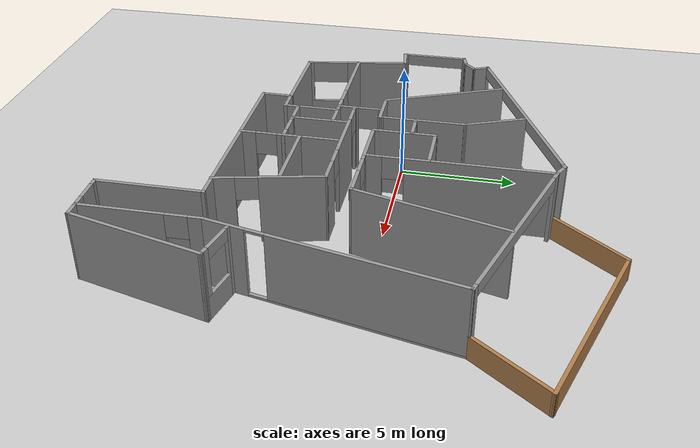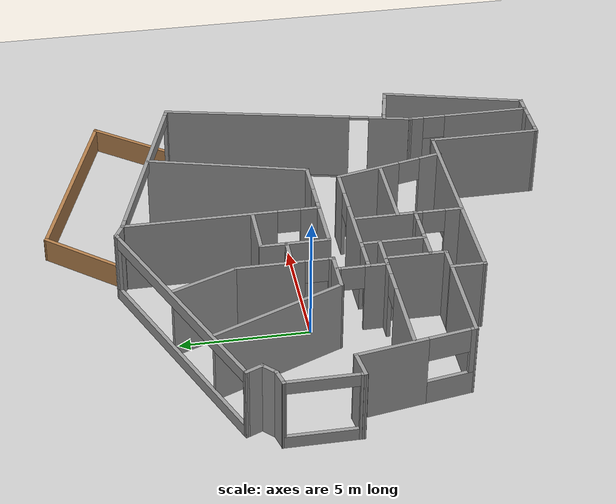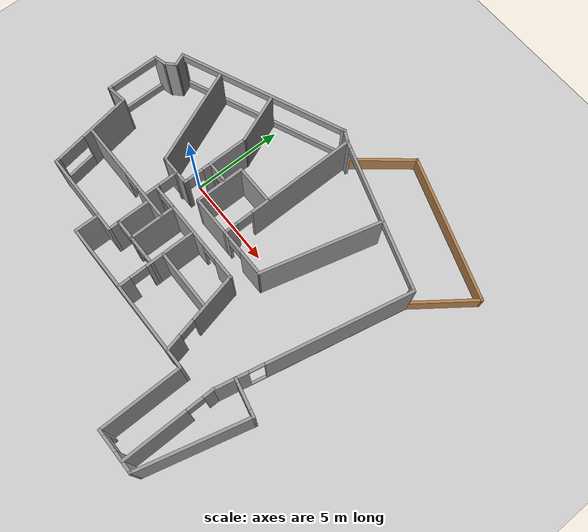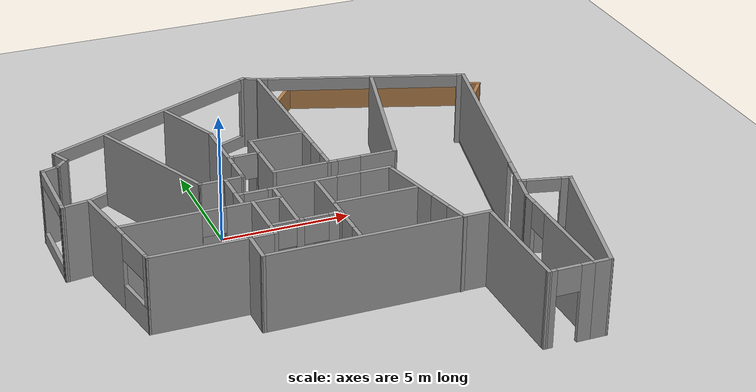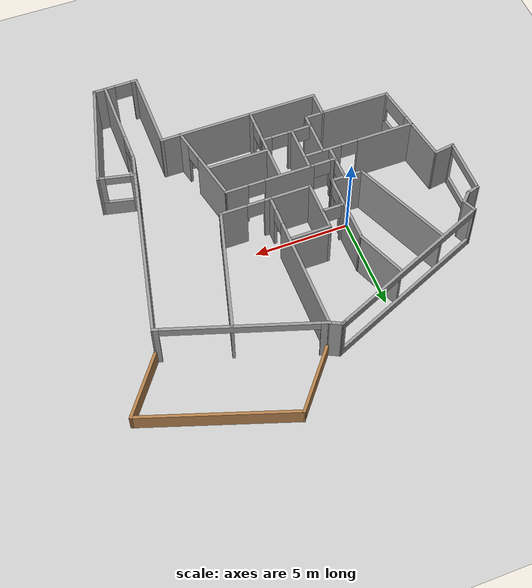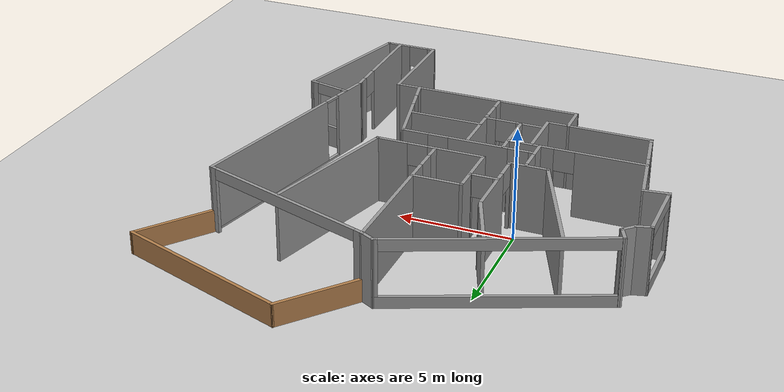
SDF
<sdf version="1.6">
 <world name="default">
  <model name="ground_plane">
   <static>1</static>
   <link name="link">
    <collision name="collision">
     <geometry><plane><normal>0 0 1</normal><size>100 100</size></plane></geometry>
     <surface>
      <contact><collide_bitmask>65535</collide_bitmask></contact>
      <friction><ode><mu>100</mu><mu2>50</mu2></ode></friction>
     </surface>
    </collision>
    <visual name="visual">
     <cast_shadows>0</cast_shadows>
     <geometry><plane><normal>0 0 1</normal><size>100 100</size></plane></geometry>
     <material>
      <script><uri>file://media/materials/scripts/gazebo.material</uri><name>Gazebo/Grey</name></script>
     </material>
    </visual>
   </link>
  </model>
  <model name="Leedon">
   <pose>3.85043 -0.63069 0 0 -0 0</pose>
   <link name="Wall_0">
    <pose>-0.03016 3.43412 0 0 -0 -1.5708</pose>
    <visual name="Wall_0_Visual_0">
     <pose>-0.847654 0 1.5 0 -0 0</pose>
     <geometry><box><size>6.05469 0.15 3</size></box></geometry>
     <material>
      <script><uri>file://media/materials/scripts/gazebo.material</uri><name>Gazebo/Grey</name></script>
      <ambient>1 1 1 1</ambient>
     </material>
     <meta><layer>0</layer></meta>
    </visual>
    <collision name="Wall_0_Collision_0">
     <geometry><box><size>6.05469 0.15 3</size></box></geometry>
     <pose>-0.847654 0 1.5 0 -0 0</pose>
    </collision>
    <visual name="Wall_0_Visual_1">
     <pose>3.47735 0 1.5 0 -0 0</pose>
     <geometry><box><size>0.795308 0.15 3</size></box></geometry>
     <material>
      <script><uri>file://media/materials/scripts/gazebo.material</uri><name>Gazebo/Grey</name></script>
      <ambient>1 1 1 1</ambient>
     </material>
     <meta><layer>0</layer></meta>
    </visual>
    <collision name="Wall_0_Collision_1">
     <geometry><box><size>0.795308 0.15 3</size></box></geometry>
     <pose>3.47735 0 1.5 0 -0 0</pose>
    </collision>
    <visual name="Wall_0_Visual_2">
     <pose>2.62969 0 2.5 0 -0 0</pose>
     <geometry><box><size>0.9 0.15 1</size></box></geometry>
     <material>
      <script><uri>file://media/materials/scripts/gazebo.material</uri><name>Gazebo/Grey</name></script>
      <ambient>1 1 1 1</ambient>
     </material>
     <meta><layer>0</layer></meta>
    </visual>
    <collision name="Wall_0_Collision_2">
     <geometry><box><size>0.9 0.15 1</size></box></geometry>
     <pose>2.62969 0 2.5 0 -0 0</pose>
    </collision>
   </link>
   <link name="Wall_1">
    <collision name="Wall_1_Collision">
     <geometry><box><size>2.24982 0.15 3</size></box></geometry>
     <pose>0 0 1.5 0 -0 0</pose>
    </collision>
    <visual name="Wall_1_Visual">
     <pose>0 0 1.5 0 -0 0</pose>
     <geometry><box><size>2.24982 0.15 3</size></box></geometry>
     <material>
      <script><uri>file://media/materials/scripts/gazebo.material</uri><name>Gazebo/Grey</name></script>
      <ambient>1 1 1 1</ambient>
     </material>
     <meta><layer>0</layer></meta>
    </visual>
    <pose>-1.08016 -0.365879 0 0 -0 3.14159</pose>
   </link>
   <link name="Wall_12">
    <collision name="Wall_12_Collision">
     <geometry><box><size>1.75 0.15 3</size></box></geometry>
     <pose>0 0 1.5 0 -0 0</pose>
    </collision>
    <visual name="Wall_12_Visual">
     <pose>0 0 1.5 0 -0 0</pose>
     <geometry><box><size>1.75 0.15 3</size></box></geometry>
     <material>
      <script><uri>file://media/materials/scripts/gazebo.material</uri><name>Gazebo/Grey</name></script>
      <ambient>1 1 1 1</ambient>
     </material>
     <meta><layer>0</layer></meta>
    </visual>
    <pose>-4.10616 -0.297879 0 0 -0 0</pose>
   </link>
   <link name="Wall_13">
    <pose>-3.31066 1.52712 0 0 -0 1.57326</pose>
    <visual name="Wall_13_Visual_0">
     <pose>-1.77975 0 1.5 0 -0 0</pose>
     <geometry><box><size>0.240493 0.15 3</size></box></geometry>
     <material>
      <script><uri>file://media/materials/scripts/gazebo.material</uri><name>Gazebo/Grey</name></script>
      <ambient>1 1 1 1</ambient>
     </material>
     <meta><layer>0</layer></meta>
    </visual>
    <collision name="Wall_13_Collision_0">
     <geometry><box><size>0.240493 0.15 3</size></box></geometry>
     <pose>-1.77975 0 1.5 0 -0 0</pose>
    </collision>
    <visual name="Wall_13_Visual_1">
     <pose>0.570247 0 1.5 0 -0 0</pose>
     <geometry><box><size>2.65951 0.15 3</size></box></geometry>
     <material>
      <script><uri>file://media/materials/scripts/gazebo.material</uri><name>Gazebo/Grey</name></script>
      <ambient>1 1 1 1</ambient>
     </material>
     <meta><layer>0</layer></meta>
    </visual>
    <collision name="Wall_13_Collision_1">
     <geometry><box><size>2.65951 0.15 3</size></box></geometry>
     <pose>0.570247 0 1.5 0 -0 0</pose>
    </collision>
    <visual name="Wall_13_Visual_2">
     <pose>-1.20951 0 2.5 0 -0 0</pose>
     <geometry><box><size>0.9 0.15 1</size></box></geometry>
     <material>
      <script><uri>file://media/materials/scripts/gazebo.material</uri><name>Gazebo/Grey</name></script>
      <ambient>1 1 1 1</ambient>
     </material>
     <meta><layer>0</layer></meta>
    </visual>
    <collision name="Wall_13_Collision_2">
     <geometry><box><size>0.9 0.15 1</size></box></geometry>
     <pose>-1.20951 0 2.5 0 -0 0</pose>
    </collision>
   </link>
   <link name="Wall_14">
    <collision name="Wall_14_Collision">
     <geometry><box><size>2.76478 0.15 3</size></box></geometry>
     <pose>0 0 1.5 0 -0 0</pose>
    </collision>
    <visual name="Wall_14_Visual">
     <pose>0 0 1.5 0 -0 0</pose>
     <geometry><box><size>2.76478 0.15 3</size></box></geometry>
     <material>
      <script><uri>file://media/materials/scripts/gazebo.material</uri><name>Gazebo/Grey</name></script>
      <ambient>1 1 1 1</ambient>
     </material>
     <meta><layer>0</layer></meta>
    </visual>
    <pose>-3.80166 4.56562 0 0 -0 1.95208</pose>
   </link>
   <link name="Wall_16">
    <collision name="Wall_16_Collision">
     <geometry><box><size>5.5 0.15 3</size></box></geometry>
     <pose>0 0 1.5 0 -0 0</pose>
    </collision>
    <visual name="Wall_16_Visual">
     <pose>0 0 1.5 0 -0 0</pose>
     <geometry><box><size>5.5 0.15 3</size></box></geometry>
     <material>
      <script><uri>file://media/materials/scripts/gazebo.material</uri><name>Gazebo/Grey</name></script>
      <ambient>1 1 1 1</ambient>
     </material>
     <meta><layer>0</layer></meta>
    </visual>
    <pose>-5.94416 2.16762 0 0 -0 1.96928</pose>
   </link>
   <link name="Wall_18">
    <collision name="Wall_18_Collision">
     <geometry><box><size>4.5 0.15 3</size></box></geometry>
     <pose>0 0 1.5 0 -0 0</pose>
    </collision>
    <visual name="Wall_18_Visual">
     <pose>0 0 1.5 0 -0 0</pose>
     <geometry><box><size>4.5 0.15 3</size></box></geometry>
     <material>
      <script><uri>file://media/materials/scripts/gazebo.material</uri><name>Gazebo/Grey</name></script>
      <ambient>1 1 1 1</ambient>
     </material>
     <meta><layer>0</layer></meta>
    </visual>
    <pose>3.83384 -7.96688 0 0 -0 1.5708</pose>
   </link>
   <link name="Wall_19">
    <collision name="Wall_19_Collision">
     <geometry><box><size>8.5 0.15 3</size></box></geometry>
     <pose>0 0 1.5 0 -0 0</pose>
    </collision>
    <visual name="Wall_19_Visual">
     <pose>0 0 1.5 0 -0 0</pose>
     <geometry><box><size>8.5 0.15 3</size></box></geometry>
     <material>
      <script><uri>file://media/materials/scripts/gazebo.material</uri><name>Gazebo/Grey</name></script>
      <ambient>1 1 1 1</ambient>
     </material>
     <meta><layer>0</layer></meta>
    </visual>
    <pose>-0.34116 -5.79188 0 0 -0 3.14159</pose>
   </link>
   <link name="Wall_2">
    <collision name="Wall_2_Collision">
     <geometry><box><size>2.75 0.15 3</size></box></geometry>
     <pose>0 0 1.5 0 -0 0</pose>
    </collision>
    <visual name="Wall_2_Visual">
     <pose>0 0 1.5 0 -0 0</pose>
     <geometry><box><size>2.75 0.15 3</size></box></geometry>
     <material>
      <script><uri>file://media/materials/scripts/gazebo.material</uri><name>Gazebo/Grey</name></script>
      <ambient>1 1 1 1</ambient>
     </material>
     <meta><layer>0</layer></meta>
    </visual>
    <pose>-2.13016 0.934121 0 0 -0 1.5708</pose>
   </link>
   <link name="Wall_20">
    <collision name="Wall_20_Collision">
     <geometry><box><size>1.4062 0.15 3</size></box></geometry>
     <pose>0 0 1.5 0 -0 0</pose>
    </collision>
    <visual name="Wall_20_Visual">
     <pose>0 0 1.5 0 -0 0</pose>
     <geometry><box><size>1.4062 0.15 3</size></box></geometry>
     <material>
      <script><uri>file://media/materials/scripts/gazebo.material</uri><name>Gazebo/Grey</name></script>
      <ambient>1 1 1 1</ambient>
     </material>
     <meta><layer>0</layer></meta>
    </visual>
    <pose>-4.51366 -5.16388 0 0 -0 1.56682</pose>
   </link>
   <link name="Wall_23">
    <pose>5.52684 -7.69588 0 0 -0 1.5708</pose>
    <visual name="Wall_23_Visual_0">
     <pose>-0.760615 0 1.5 0 -0 0</pose>
     <geometry><box><size>3.51267 0.15 3</size></box></geometry>
     <material>
      <script><uri>file://media/materials/scripts/gazebo.material</uri><name>Gazebo/Grey</name></script>
      <ambient>1 1 1 1</ambient>
     </material>
     <meta><layer>0</layer></meta>
    </visual>
    <collision name="Wall_23_Collision_0">
     <geometry><box><size>3.51267 0.15 3</size></box></geometry>
     <pose>-0.760615 0 1.5 0 -0 0</pose>
    </collision>
    <visual name="Wall_23_Visual_1">
     <pose>2.20634 0 1.5 0 -0 0</pose>
     <geometry><box><size>0.621229 0.15 3</size></box></geometry>
     <material>
      <script><uri>file://media/materials/scripts/gazebo.material</uri><name>Gazebo/Grey</name></script>
      <ambient>1 1 1 1</ambient>
     </material>
     <meta><layer>0</layer></meta>
    </visual>
    <collision name="Wall_23_Collision_1">
     <geometry><box><size>0.621229 0.15 3</size></box></geometry>
     <pose>2.20634 0 1.5 0 -0 0</pose>
    </collision>
    <visual name="Wall_23_Visual_2">
     <pose>1.44572 0 2.5 0 -0 0</pose>
     <geometry><box><size>0.9 0.15 1</size></box></geometry>
     <material>
      <script><uri>file://media/materials/scripts/gazebo.material</uri><name>Gazebo/Grey</name></script>
      <ambient>1 1 1 1</ambient>
     </material>
     <meta><layer>0</layer></meta>
    </visual>
    <collision name="Wall_23_Collision_2">
     <geometry><box><size>0.9 0.15 1</size></box></geometry>
     <pose>1.44572 0 2.5 0 -0 0</pose>
    </collision>
   </link>
   <link name="Wall_28">
    <pose>-1.04316 -1.51288 0 0 -0 3.14159</pose>
    <visual name="Wall_28_Visual_0">
     <pose>-2.3836 0 1.5 0 -0 0</pose>
     <geometry><box><size>1.23281 0.15 3</size></box></geometry>
     <material>
      <script><uri>file://media/materials/scripts/gazebo.material</uri><name>Gazebo/Grey</name></script>
      <ambient>1 1 1 1</ambient>
     </material>
     <meta><layer>0</layer></meta>
    </visual>
    <collision name="Wall_28_Collision_0">
     <geometry><box><size>1.23281 0.15 3</size></box></geometry>
     <pose>-2.3836 0 1.5 0 -0 0</pose>
    </collision>
    <visual name="Wall_28_Visual_1">
     <pose>0.449055 0 1.5 0 -0 0</pose>
     <geometry><box><size>2.6325 0.15 3</size></box></geometry>
     <material>
      <script><uri>file://media/materials/scripts/gazebo.material</uri><name>Gazebo/Grey</name></script>
      <ambient>1 1 1 1</ambient>
     </material>
     <meta><layer>0</layer></meta>
    </visual>
    <collision name="Wall_28_Collision_1">
     <geometry><box><size>2.6325 0.15 3</size></box></geometry>
     <pose>0.449055 0 1.5 0 -0 0</pose>
    </collision>
    <visual name="Wall_28_Visual_2">
     <pose>2.83265 0 1.5 0 -0 0</pose>
     <geometry><box><size>0.334695 0.15 3</size></box></geometry>
     <material>
      <script><uri>file://media/materials/scripts/gazebo.material</uri><name>Gazebo/Grey</name></script>
      <ambient>1 1 1 1</ambient>
     </material>
     <meta><layer>0</layer></meta>
    </visual>
    <collision name="Wall_28_Collision_2">
     <geometry><box><size>0.334695 0.15 3</size></box></geometry>
     <pose>2.83265 0 1.5 0 -0 0</pose>
    </collision>
    <visual name="Wall_28_Visual_3">
     <pose>-1.31719 0 2.5 0 -0 0</pose>
     <geometry><box><size>0.9 0.15 1</size></box></geometry>
     <material>
      <script><uri>file://media/materials/scripts/gazebo.material</uri><name>Gazebo/Grey</name></script>
      <ambient>1 1 1 1</ambient>
     </material>
     <meta><layer>0</layer></meta>
    </visual>
    <collision name="Wall_28_Collision_3">
     <geometry><box><size>0.9 0.15 1</size></box></geometry>
     <pose>-1.31719 0 2.5 0 -0 0</pose>
    </collision>
    <visual name="Wall_28_Visual_4">
     <pose>2.2153 0 2.5 0 -0 0</pose>
     <geometry><box><size>0.9 0.15 1</size></box></geometry>
     <material>
      <script><uri>file://media/materials/scripts/gazebo.material</uri><name>Gazebo/Grey</name></script>
      <ambient>1 1 1 1</ambient>
     </material>
     <meta><layer>0</layer></meta>
    </visual>
    <collision name="Wall_28_Collision_4">
     <geometry><box><size>0.9 0.15 1</size></box></geometry>
     <pose>2.2153 0 2.5 0 -0 0</pose>
    </collision>
   </link>
   <link name="Wall_3">
    <collision name="Wall_3_Collision">
     <geometry><box><size>2.24982 0.15 3</size></box></geometry>
     <pose>0 0 1.5 0 -0 0</pose>
    </collision>
    <visual name="Wall_3_Visual">
     <pose>0 0 1.5 0 -0 0</pose>
     <geometry><box><size>2.24982 0.15 3</size></box></geometry>
     <material>
      <script><uri>file://media/materials/scripts/gazebo.material</uri><name>Gazebo/Grey</name></script>
      <ambient>1 1 1 1</ambient>
     </material>
     <meta><layer>0</layer></meta>
    </visual>
    <pose>-1.08016 2.23412 0 0 -0 0</pose>
   </link>
   <link name="Wall_30">
    <pose>-3.96916 -1.28188 0 0 -0 1.5708</pose>
    <visual name="Wall_30_Visual_0">
     <pose>-0.540622 0 1.5 0 -0 0</pose>
     <geometry><box><size>0.918757 0.15 3</size></box></geometry>
     <material>
      <script><uri>file://media/materials/scripts/gazebo.material</uri><name>Gazebo/Grey</name></script>
      <ambient>1 1 1 1</ambient>
     </material>
     <meta><layer>0</layer></meta>
    </visual>
    <collision name="Wall_30_Collision_0">
     <geometry><box><size>0.918757 0.15 3</size></box></geometry>
     <pose>-0.540622 0 1.5 0 -0 0</pose>
    </collision>
    <visual name="Wall_30_Visual_1">
     <pose>0.909378 0 1.5 0 -0 0</pose>
     <geometry><box><size>0.181243 0.15 3</size></box></geometry>
     <material>
      <script><uri>file://media/materials/scripts/gazebo.material</uri><name>Gazebo/Grey</name></script>
      <ambient>1 1 1 1</ambient>
     </material>
     <meta><layer>0</layer></meta>
    </visual>
    <collision name="Wall_30_Collision_1">
     <geometry><box><size>0.181243 0.15 3</size></box></geometry>
     <pose>0.909378 0 1.5 0 -0 0</pose>
    </collision>
    <visual name="Wall_30_Visual_2">
     <pose>0.368757 0 2.5 0 -0 0</pose>
     <geometry><box><size>0.9 0.15 1</size></box></geometry>
     <material>
      <script><uri>file://media/materials/scripts/gazebo.material</uri><name>Gazebo/Grey</name></script>
      <ambient>1 1 1 1</ambient>
     </material>
     <meta><layer>0</layer></meta>
    </visual>
    <collision name="Wall_30_Collision_2">
     <geometry><box><size>0.9 0.15 1</size></box></geometry>
     <pose>0.368757 0 2.5 0 -0 0</pose>
    </collision>
   </link>
   <link name="Wall_32">
    <collision name="Wall_32_Collision">
     <geometry><box><size>2.5 0.15 3</size></box></geometry>
     <pose>0 0 1.5 0 -0 0</pose>
    </collision>
    <visual name="Wall_32_Visual">
     <pose>0 0 1.5 0 -0 0</pose>
     <geometry><box><size>2.5 0.15 3</size></box></geometry>
     <material>
      <script><uri>file://media/materials/scripts/gazebo.material</uri><name>Gazebo/Grey</name></script>
      <ambient>1 1 1 1</ambient>
     </material>
     <meta><layer>0</layer></meta>
    </visual>
    <pose>-2.58216 -2.72788 0 0 -0 -1.5708</pose>
   </link>
   <link name="Wall_35">
    <pose>-5.55416 -2.21488 0 0 -0 3.14159</pose>
    <visual name="Wall_35_Visual_0">
     <pose>-1.98221 0 1.5 0 -0 0</pose>
     <geometry><box><size>2.03558 0.15 3</size></box></geometry>
     <material>
      <script><uri>file://media/materials/scripts/gazebo.material</uri><name>Gazebo/Grey</name></script>
      <ambient>1 1 1 1</ambient>
     </material>
     <meta><layer>0</layer></meta>
    </visual>
    <collision name="Wall_35_Collision_0">
     <geometry><box><size>2.03558 0.15 3</size></box></geometry>
     <pose>-1.98221 0 1.5 0 -0 0</pose>
    </collision>
    <visual name="Wall_35_Visual_1">
     <pose>1.46779 0 1.5 0 -0 0</pose>
     <geometry><box><size>3.06442 0.15 3</size></box></geometry>
     <material>
      <script><uri>file://media/materials/scripts/gazebo.material</uri><name>Gazebo/Grey</name></script>
      <ambient>1 1 1 1</ambient>
     </material>
     <meta><layer>0</layer></meta>
    </visual>
    <collision name="Wall_35_Collision_1">
     <geometry><box><size>3.06442 0.15 3</size></box></geometry>
     <pose>1.46779 0 1.5 0 -0 0</pose>
    </collision>
    <visual name="Wall_35_Visual_2">
     <pose>-0.514423 0 2.5 0 -0 0</pose>
     <geometry><box><size>0.9 0.15 1</size></box></geometry>
     <material>
      <script><uri>file://media/materials/scripts/gazebo.material</uri><name>Gazebo/Grey</name></script>
      <ambient>1 1 1 1</ambient>
     </material>
     <meta><layer>0</layer></meta>
    </visual>
    <collision name="Wall_35_Collision_2">
     <geometry><box><size>0.9 0.15 1</size></box></geometry>
     <pose>-0.514423 0 2.5 0 -0 0</pose>
    </collision>
   </link>
   <link name="Wall_37">
    <pose>-0.98716 -3.68688 0 0 -0 -1.5708</pose>
    <visual name="Wall_37_Visual_0">
     <pose>-0.78688 0 1.5 0 -0 0</pose>
     <geometry><box><size>2.67624 0.15 3</size></box></geometry>
     <material>
      <script><uri>file://media/materials/scripts/gazebo.material</uri><name>Gazebo/Grey</name></script>
      <ambient>1 1 1 1</ambient>
     </material>
     <meta><layer>0</layer></meta>
    </visual>
    <collision name="Wall_37_Collision_0">
     <geometry><box><size>2.67624 0.15 3</size></box></geometry>
     <pose>-0.78688 0 1.5 0 -0 0</pose>
    </collision>
    <visual name="Wall_37_Visual_1">
     <pose>1.78812 0 1.5 0 -0 0</pose>
     <geometry><box><size>0.67376 0.15 3</size></box></geometry>
     <material>
      <script><uri>file://media/materials/scripts/gazebo.material</uri><name>Gazebo/Grey</name></script>
      <ambient>1 1 1 1</ambient>
     </material>
     <meta><layer>0</layer></meta>
    </visual>
    <collision name="Wall_37_Collision_1">
     <geometry><box><size>0.67376 0.15 3</size></box></geometry>
     <pose>1.78812 0 1.5 0 -0 0</pose>
    </collision>
    <visual name="Wall_37_Visual_2">
     <pose>1.00124 0 2.5 0 -0 0</pose>
     <geometry><box><size>0.9 0.15 1</size></box></geometry>
     <material>
      <script><uri>file://media/materials/scripts/gazebo.material</uri><name>Gazebo/Grey</name></script>
      <ambient>1 1 1 1</ambient>
     </material>
     <meta><layer>0</layer></meta>
    </visual>
    <collision name="Wall_37_Collision_2">
     <geometry><box><size>0.9 0.15 1</size></box></geometry>
     <pose>1.00124 0 2.5 0 -0 0</pose>
    </collision>
   </link>
   <link name="Wall_39">
    <collision name="Wall_39_Collision">
     <geometry><box><size>3.25 0.15 3</size></box></geometry>
     <pose>0 0 1.5 0 -0 0</pose>
    </collision>
    <visual name="Wall_39_Visual">
     <pose>0 0 1.5 0 -0 0</pose>
     <geometry><box><size>3.25 0.15 3</size></box></geometry>
     <material>
      <script><uri>file://media/materials/scripts/gazebo.material</uri><name>Gazebo/Grey</name></script>
      <ambient>1 1 1 1</ambient>
     </material>
     <meta><layer>0</layer></meta>
    </visual>
    <pose>0.56784 -3.26388 0 0 -0 0</pose>
   </link>
   <link name="Wall_41">
    <pose>2.35484 -3.66438 0 0 -0 1.7872</pose>
    <visual name="Wall_41_Visual_0">
     <pose>-1.79216 0 1.5 0 -0 0</pose>
     <geometry><box><size>0.971024 0.15 3</size></box></geometry>
     <material>
      <script><uri>file://media/materials/scripts/gazebo.material</uri><name>Gazebo/Grey</name></script>
      <ambient>1 1 1 1</ambient>
     </material>
     <meta><layer>0</layer></meta>
    </visual>
    <collision name="Wall_41_Collision_0">
     <geometry><box><size>0.971024 0.15 3</size></box></geometry>
     <pose>-1.79216 0 1.5 0 -0 0</pose>
    </collision>
    <visual name="Wall_41_Visual_1">
     <pose>0.935512 0 1.5 0 -0 0</pose>
     <geometry><box><size>2.68432 0.15 3</size></box></geometry>
     <material>
      <script><uri>file://media/materials/scripts/gazebo.material</uri><name>Gazebo/Grey</name></script>
      <ambient>1 1 1 1</ambient>
     </material>
     <meta><layer>0</layer></meta>
    </visual>
    <collision name="Wall_41_Collision_1">
     <geometry><box><size>2.68432 0.15 3</size></box></geometry>
     <pose>0.935512 0 1.5 0 -0 0</pose>
    </collision>
    <visual name="Wall_41_Visual_2">
     <pose>-0.856649 0 2.5 0 -0 0</pose>
     <geometry><box><size>0.9 0.15 1</size></box></geometry>
     <material>
      <script><uri>file://media/materials/scripts/gazebo.material</uri><name>Gazebo/Grey</name></script>
      <ambient>1 1 1 1</ambient>
     </material>
     <meta><layer>0</layer></meta>
    </visual>
    <collision name="Wall_41_Collision_2">
     <geometry><box><size>0.9 0.15 1</size></box></geometry>
     <pose>-0.856649 0 2.5 0 -0 0</pose>
    </collision>
   </link>
   <link name="Wall_45">
    <collision name="Wall_45_Collision">
     <geometry><box><size>0.75 0.15 3</size></box></geometry>
     <pose>0 0 1.5 0 -0 0</pose>
    </collision>
    <visual name="Wall_45_Visual">
     <pose>0 0 1.5 0 -0 0</pose>
     <geometry><box><size>0.75 0.15 3</size></box></geometry>
     <material>
      <script><uri>file://media/materials/scripts/gazebo.material</uri><name>Gazebo/Grey</name></script>
      <ambient>1 1 1 1</ambient>
     </material>
     <meta><layer>0</layer></meta>
    </visual>
    <pose>5.82684 -10.1379 0 0 -0 0</pose>
   </link>
   <link name="Wall_47">
    <collision name="Wall_47_Collision">
     <geometry><box><size>5.87389 0.15 3</size></box></geometry>
     <pose>0 0 1.5 0 -0 0</pose>
    </collision>
    <visual name="Wall_47_Visual">
     <pose>0 0 1.5 0 -0 0</pose>
     <geometry><box><size>5.87389 0.15 3</size></box></geometry>
     <material>
      <script><uri>file://media/materials/scripts/gazebo.material</uri><name>Gazebo/Grey</name></script>
      <ambient>1 1 1 1</ambient>
     </material>
     <meta><layer>0</layer></meta>
    </visual>
    <pose>6.85334 -7.36988 0 0 -0 -1.82747</pose>
   </link>
   <link name="Wall_49">
    <pose>6.68284 -4.39388 0 0 -0 -0.227857</pose>
    <visual name="Wall_49_Visual_0">
     <pose>-0.848793 0 1.5 0 -0 0</pose>
     <geometry><box><size>0.294331 0.15 3</size></box></geometry>
     <material>
      <script><uri>file://media/materials/scripts/gazebo.material</uri><name>Gazebo/Grey</name></script>
      <ambient>1 1 1 1</ambient>
     </material>
     <meta><layer>0</layer></meta>
    </visual>
    <collision name="Wall_49_Collision_0">
     <geometry><box><size>0.294331 0.15 3</size></box></geometry>
     <pose>-0.848793 0 1.5 0 -0 0</pose>
    </collision>
    <visual name="Wall_49_Visual_1">
     <pose>0.147165 0 0.5 0 -0 0</pose>
     <geometry><box><size>1.69759 0.15 1</size></box></geometry>
     <material>
      <script><uri>file://media/materials/scripts/gazebo.material</uri><name>Gazebo/Grey</name></script>
      <ambient>1 1 1 1</ambient>
     </material>
     <meta><layer>0</layer></meta>
    </visual>
    <collision name="Wall_49_Collision_1">
     <geometry><box><size>1.69759 0.15 1</size></box></geometry>
     <pose>0.147165 0 0.5 0 -0 0</pose>
    </collision>
    <visual name="Wall_49_Visual_2">
     <pose>0.785665 0 2 0 -0 0</pose>
     <geometry><box><size>0.420587 0.15 2</size></box></geometry>
     <material>
      <script><uri>file://media/materials/scripts/gazebo.material</uri><name>Gazebo/Grey</name></script>
      <ambient>1 1 1 1</ambient>
     </material>
     <meta><layer>0</layer></meta>
    </visual>
    <collision name="Wall_49_Collision_2">
     <geometry><box><size>0.420587 0.15 2</size></box></geometry>
     <pose>0.785665 0 2 0 -0 0</pose>
    </collision>
    <visual name="Wall_49_Visual_3">
     <pose>-0.063128 0 2.75 0 -0 0</pose>
     <geometry><box><size>1.277 0.15 0.5</size></box></geometry>
     <material>
      <script><uri>file://media/materials/scripts/gazebo.material</uri><name>Gazebo/Grey</name></script>
      <ambient>1 1 1 1</ambient>
     </material>
     <meta><layer>0</layer></meta>
    </visual>
    <collision name="Wall_49_Collision_3">
     <geometry><box><size>1.277 0.15 0.5</size></box></geometry>
     <pose>-0.063128 0 2.75 0 -0 0</pose>
    </collision>
   </link>
   <link name="Wall_5">
    <pose>1.26984 -0.365879 0 0 -0 0</pose>
    <visual name="Wall_5_Visual_0">
     <pose>-1.17066 0 1.5 0 -0 0</pose>
     <geometry><box><size>0.408674 0.15 3</size></box></geometry>
     <material>
      <script><uri>file://media/materials/scripts/gazebo.material</uri><name>Gazebo/Grey</name></script>
      <ambient>1 1 1 1</ambient>
     </material>
     <meta><layer>0</layer></meta>
    </visual>
    <collision name="Wall_5_Collision_0">
     <geometry><box><size>0.408674 0.15 3</size></box></geometry>
     <pose>-1.17066 0 1.5 0 -0 0</pose>
    </collision>
    <visual name="Wall_5_Visual_1">
     <pose>0.654337 0 1.5 0 -0 0</pose>
     <geometry><box><size>1.44133 0.15 3</size></box></geometry>
     <material>
      <script><uri>file://media/materials/scripts/gazebo.material</uri><name>Gazebo/Grey</name></script>
      <ambient>1 1 1 1</ambient>
     </material>
     <meta><layer>0</layer></meta>
    </visual>
    <collision name="Wall_5_Collision_1">
     <geometry><box><size>1.44133 0.15 3</size></box></geometry>
     <pose>0.654337 0 1.5 0 -0 0</pose>
    </collision>
    <visual name="Wall_5_Visual_2">
     <pose>-0.516326 0 2.5 0 -0 0</pose>
     <geometry><box><size>0.9 0.15 1</size></box></geometry>
     <material>
      <script><uri>file://media/materials/scripts/gazebo.material</uri><name>Gazebo/Grey</name></script>
      <ambient>1 1 1 1</ambient>
     </material>
     <meta><layer>0</layer></meta>
    </visual>
    <collision name="Wall_5_Collision_2">
     <geometry><box><size>0.9 0.15 1</size></box></geometry>
     <pose>-0.516326 0 2.5 0 -0 0</pose>
    </collision>
   </link>
   <link name="Wall_52">
    <collision name="Wall_52_Collision">
     <geometry><box><size>3.76077 0.15 3</size></box></geometry>
     <pose>0 0 1.5 0 -0 0</pose>
    </collision>
    <visual name="Wall_52_Visual">
     <pose>0 0 1.5 0 -0 0</pose>
     <geometry><box><size>3.76077 0.15 3</size></box></geometry>
     <material>
      <script><uri>file://media/materials/scripts/gazebo.material</uri><name>Gazebo/Grey</name></script>
      <ambient>1 1 1 1</ambient>
     </material>
     <meta><layer>0</layer></meta>
    </visual>
    <pose>-6.31666 -4.52888 0 0 -0 3.13772</pose>
   </link>
   <link name="Wall_54">
    <pose>-8.50166 -2.27988 0 0 -0 -1.40312</pose>
    <visual name="Wall_54_Visual_0">
     <pose>-0.939722 0 1.5 0 -0 0</pose>
     <geometry><box><size>2.81807 0.15 3</size></box></geometry>
     <material>
      <script><uri>file://media/materials/scripts/gazebo.material</uri><name>Gazebo/Grey</name></script>
      <ambient>1 1 1 1</ambient>
     </material>
     <meta><layer>0</layer></meta>
    </visual>
    <collision name="Wall_54_Collision_0">
     <geometry><box><size>2.81807 0.15 3</size></box></geometry>
     <pose>-0.939722 0 1.5 0 -0 0</pose>
    </collision>
    <visual name="Wall_54_Visual_1">
     <pose>1.40904 0 0.5 0 -0 0</pose>
     <geometry><box><size>1.87944 0.15 1</size></box></geometry>
     <material>
      <script><uri>file://media/materials/scripts/gazebo.material</uri><name>Gazebo/Grey</name></script>
      <ambient>1 1 1 1</ambient>
     </material>
     <meta><layer>0</layer></meta>
    </visual>
    <collision name="Wall_54_Collision_1">
     <geometry><box><size>1.87944 0.15 1</size></box></geometry>
     <pose>1.40904 0 0.5 0 -0 0</pose>
    </collision>
    <visual name="Wall_54_Visual_2">
     <pose>2.21054 0 2 0 -0 0</pose>
     <geometry><box><size>0.276444 0.15 2</size></box></geometry>
     <material>
      <script><uri>file://media/materials/scripts/gazebo.material</uri><name>Gazebo/Grey</name></script>
      <ambient>1 1 1 1</ambient>
     </material>
     <meta><layer>0</layer></meta>
    </visual>
    <collision name="Wall_54_Collision_2">
     <geometry><box><size>0.276444 0.15 2</size></box></geometry>
     <pose>2.21054 0 2 0 -0 0</pose>
    </collision>
    <visual name="Wall_54_Visual_3">
     <pose>1.27082 0 2.5 0 -0 0</pose>
     <geometry><box><size>1.603 0.15 1</size></box></geometry>
     <material>
      <script><uri>file://media/materials/scripts/gazebo.material</uri><name>Gazebo/Grey</name></script>
      <ambient>1 1 1 1</ambient>
     </material>
     <meta><layer>0</layer></meta>
    </visual>
    <collision name="Wall_54_Collision_3">
     <geometry><box><size>1.603 0.15 1</size></box></geometry>
     <pose>1.27082 0 2.5 0 -0 0</pose>
    </collision>
   </link>
   <link name="Wall_56">
    <collision name="Wall_56_Collision">
     <geometry><box><size>1.16105 0.15 3</size></box></geometry>
     <pose>0 0 1.5 0 -0 0</pose>
    </collision>
    <visual name="Wall_56_Visual">
     <pose>0 0 1.5 0 -0 0</pose>
     <geometry><box><size>1.16105 0.15 3</size></box></geometry>
     <material>
      <script><uri>file://media/materials/scripts/gazebo.material</uri><name>Gazebo/Grey</name></script>
      <ambient>1 1 1 1</ambient>
     </material>
     <meta><layer>0</layer></meta>
    </visual>
    <pose>-9.38216 -0.105379 0 0 -0 0.133924</pose>
   </link>
   <link name="Wall_58">
    <pose>-9.88316 1.25212 0 0 -0 1.5708</pose>
    <visual name="Wall_58_Visual_0">
     <pose>-1.37985 0 1.5 0 -0 0</pose>
     <geometry><box><size>0.240307 0.15 3</size></box></geometry>
     <material>
      <script><uri>file://media/materials/scripts/gazebo.material</uri><name>Gazebo/Grey</name></script>
      <ambient>1 1 1 1</ambient>
     </material>
     <meta><layer>0</layer></meta>
    </visual>
    <collision name="Wall_58_Collision_0">
     <geometry><box><size>0.240307 0.15 3</size></box></geometry>
     <pose>-1.37985 0 1.5 0 -0 0</pose>
    </collision>
    <visual name="Wall_58_Visual_1">
     <pose>0.120153 0 0.25 0 -0 0</pose>
     <geometry><box><size>2.75969 0.15 0.5</size></box></geometry>
     <material>
      <script><uri>file://media/materials/scripts/gazebo.material</uri><name>Gazebo/Grey</name></script>
      <ambient>1 1 1 1</ambient>
     </material>
     <meta><layer>0</layer></meta>
    </visual>
    <collision name="Wall_58_Collision_1">
     <geometry><box><size>2.75969 0.15 0.5</size></box></geometry>
     <pose>0.120153 0 0.25 0 -0 0</pose>
    </collision>
    <visual name="Wall_58_Visual_2">
     <pose>1.43544 0 1.75 0 -0 0</pose>
     <geometry><box><size>0.129114 0.15 2.5</size></box></geometry>
     <material>
      <script><uri>file://media/materials/scripts/gazebo.material</uri><name>Gazebo/Grey</name></script>
      <ambient>1 1 1 1</ambient>
     </material>
     <meta><layer>0</layer></meta>
    </visual>
    <collision name="Wall_58_Collision_2">
     <geometry><box><size>0.129114 0.15 2.5</size></box></geometry>
     <pose>1.43544 0 1.75 0 -0 0</pose>
    </collision>
    <visual name="Wall_58_Visual_3">
     <pose>0.055596 0 2.75 0 -0 0</pose>
     <geometry><box><size>2.63058 0.15 0.5</size></box></geometry>
     <material>
      <script><uri>file://media/materials/scripts/gazebo.material</uri><name>Gazebo/Grey</name></script>
      <ambient>1 1 1 1</ambient>
     </material>
     <meta><layer>0</layer></meta>
    </visual>
    <collision name="Wall_58_Collision_3">
     <geometry><box><size>2.63058 0.15 0.5</size></box></geometry>
     <pose>0.055596 0 2.75 0 -0 0</pose>
    </collision>
   </link>
   <link name="Wall_59">
    <collision name="Wall_59_Collision">
     <geometry><box><size>0.75 0.15 3</size></box></geometry>
     <pose>0 0 1.5 0 -0 0</pose>
    </collision>
    <visual name="Wall_59_Visual">
     <pose>0 0 1.5 0 -0 0</pose>
     <geometry><box><size>0.75 0.15 3</size></box></geometry>
     <material>
      <script><uri>file://media/materials/scripts/gazebo.material</uri><name>Gazebo/Grey</name></script>
      <ambient>1 1 1 1</ambient>
     </material>
     <meta><layer>0</layer></meta>
    </visual>
    <pose>-9.59316 2.75462 0 0 -0 0.261139</pose>
   </link>
   <link name="Wall_6">
    <collision name="Wall_6_Collision">
     <geometry><box><size>6.5 0.15 3</size></box></geometry>
     <pose>0 0 1.5 0 -0 0</pose>
    </collision>
    <visual name="Wall_6_Visual">
     <pose>0 0 1.5 0 -0 0</pose>
     <geometry><box><size>6.5 0.15 3</size></box></geometry>
     <material>
      <script><uri>file://media/materials/scripts/gazebo.material</uri><name>Gazebo/Grey</name></script>
      <ambient>1 1 1 1</ambient>
     </material>
     <meta><layer>0</layer></meta>
    </visual>
    <pose>3.39134 2.70112 0 0 -0 1.30909</pose>
   </link>
   <link name="Wall_60">
    <collision name="Wall_60_Collision">
     <geometry><box><size>0.75 0.15 3</size></box></geometry>
     <pose>0 0 1.5 0 -0 0</pose>
    </collision>
    <visual name="Wall_60_Visual">
     <pose>0 0 1.5 0 -0 0</pose>
     <geometry><box><size>0.75 0.15 3</size></box></geometry>
     <material>
      <script><uri>file://media/materials/scripts/gazebo.material</uri><name>Gazebo/Grey</name></script>
      <ambient>1 1 1 1</ambient>
     </material>
     <meta><layer>0</layer></meta>
    </visual>
    <pose>-9.09116 3.04462 0 0 -0 0.786576</pose>
   </link>
   <link name="Wall_63">
    <collision name="Wall_63_Collision">
     <geometry><box><size>0.767171 0.15 3</size></box></geometry>
     <pose>0 0 1.5 0 -0 0</pose>
    </collision>
    <visual name="Wall_63_Visual">
     <pose>0 0 1.5 0 -0 0</pose>
     <geometry><box><size>0.767171 0.15 3</size></box></geometry>
     <material>
      <script><uri>file://media/materials/scripts/gazebo.material</uri><name>Gazebo/Grey</name></script>
      <ambient>1 1 1 1</ambient>
     </material>
     <meta><layer>0</layer></meta>
    </visual>
    <pose>-0.30516 7.37412 0 0 -0 -0.470894</pose>
   </link>
   <link name="Wall_67">
    <collision name="Wall_67_Collision">
     <geometry><box><size>0.804668 0.15 3</size></box></geometry>
     <pose>0 0 1.5 0 -0 0</pose>
    </collision>
    <visual name="Wall_67_Visual">
     <pose>0 0 1.5 0 -0 0</pose>
     <geometry><box><size>0.804668 0.15 3</size></box></geometry>
     <material>
      <script><uri>file://media/materials/scripts/gazebo.material</uri><name>Gazebo/Grey</name></script>
      <ambient>1 1 1 1</ambient>
     </material>
     <meta><layer>0</layer></meta>
    </visual>
    <pose>-9.01016 3.55712 0 0 -0 -1.15909</pose>
   </link>
   <link name="Wall_69">
    <pose>-4.86066 5.68562 0 0 -0 0.403707</pose>
    <visual name="Wall_69_Visual_0">
     <pose>-4.65078 0 1.5 0 -0 0</pose>
     <geometry><box><size>0.157803 0.15 3</size></box></geometry>
     <material>
      <script><uri>file://media/materials/scripts/gazebo.material</uri><name>Gazebo/Grey</name></script>
      <ambient>1 1 1 1</ambient>
     </material>
     <meta><layer>0</layer></meta>
    </visual>
    <collision name="Wall_69_Collision_0">
     <geometry><box><size>0.157803 0.15 3</size></box></geometry>
     <pose>-4.65078 0 1.5 0 -0 0</pose>
    </collision>
    <visual name="Wall_69_Visual_1">
     <pose>0.078901 0 0.25 0 -0 0</pose>
     <geometry><box><size>9.30156 0.15 0.5</size></box></geometry>
     <material>
      <script><uri>file://media/materials/scripts/gazebo.material</uri><name>Gazebo/Grey</name></script>
      <ambient>1 1 1 1</ambient>
     </material>
     <meta><layer>0</layer></meta>
    </visual>
    <collision name="Wall_69_Collision_1">
     <geometry><box><size>9.30156 0.15 0.5</size></box></geometry>
     <pose>0.078901 0 0.25 0 -0 0</pose>
    </collision>
    <visual name="Wall_69_Visual_2">
     <pose>4.6054 0 1.75 0 -0 0</pose>
     <geometry><box><size>0.24856 0.15 2.5</size></box></geometry>
     <material>
      <script><uri>file://media/materials/scripts/gazebo.material</uri><name>Gazebo/Grey</name></script>
      <ambient>1 1 1 1</ambient>
     </material>
     <meta><layer>0</layer></meta>
    </visual>
    <collision name="Wall_69_Collision_2">
     <geometry><box><size>0.24856 0.15 2.5</size></box></geometry>
     <pose>4.6054 0 1.75 0 -0 0</pose>
    </collision>
    <visual name="Wall_69_Visual_3">
     <pose>-0.045379 0 2.75 0 -0 0</pose>
     <geometry><box><size>9.053 0.15 0.5</size></box></geometry>
     <material>
      <script><uri>file://media/materials/scripts/gazebo.material</uri><name>Gazebo/Grey</name></script>
      <ambient>1 1 1 1</ambient>
     </material>
     <meta><layer>0</layer></meta>
    </visual>
    <collision name="Wall_69_Collision_3">
     <geometry><box><size>9.053 0.15 0.5</size></box></geometry>
     <pose>-0.045379 0 2.75 0 -0 0</pose>
    </collision>
   </link>
   <link name="Wall_71">
    <collision name="Wall_71_Collision">
     <geometry><box><size>3.88118 0.15 1</size></box></geometry>
     <pose>0 0 0.5 0 -0 0</pose>
    </collision>
    <visual name="Wall_71_Visual">
     <pose>0 0 0.5 0 -0 0</pose>
     <geometry><box><size>3.88118 0.15 1</size></box></geometry>
     <material>
      <script><uri>file://media/materials/scripts/gazebo.material</uri><name>Gazebo/Wood</name></script>
      <ambient>1 1 1 1</ambient>
     </material>
     <meta><layer>0</layer></meta>
    </visual>
    <pose>1.14984 8.67912 0 0 -0 -2.25558</pose>
   </link>
   <link name="Wall_72">
    <pose>3.84634 5.94912 0 0 -0 -0.320086</pose>
    <visual name="Wall_72_Visual_0">
     <pose>-3.93318 0 1.5 0 -0 0</pose>
     <geometry><box><size>0.45152 0.15 3</size></box></geometry>
     <material>
      <script><uri>file://media/materials/scripts/gazebo.material</uri><name>Gazebo/Grey</name></script>
      <ambient>1 1 1 1</ambient>
     </material>
     <meta><layer>0</layer></meta>
    </visual>
    <collision name="Wall_72_Collision_0">
     <geometry><box><size>0.45152 0.15 3</size></box></geometry>
     <pose>-3.93318 0 1.5 0 -0 0</pose>
    </collision>
    <visual name="Wall_72_Visual_1">
     <pose>3.98976 0 1.5 0 -0 0</pose>
     <geometry><box><size>0.33837 0.15 3</size></box></geometry>
     <material>
      <script><uri>file://media/materials/scripts/gazebo.material</uri><name>Gazebo/Grey</name></script>
      <ambient>1 1 1 1</ambient>
     </material>
     <meta><layer>0</layer></meta>
    </visual>
    <collision name="Wall_72_Collision_1">
     <geometry><box><size>0.33837 0.15 3</size></box></geometry>
     <pose>3.98976 0 1.5 0 -0 0</pose>
    </collision>
    <visual name="Wall_72_Visual_2">
     <pose>0.056575 0 2.75 0 -0 0</pose>
     <geometry><box><size>7.528 0.15 0.5</size></box></geometry>
     <material>
      <script><uri>file://media/materials/scripts/gazebo.material</uri><name>Gazebo/Grey</name></script>
      <ambient>1 1 1 1</ambient>
     </material>
     <meta><layer>0</layer></meta>
    </visual>
    <collision name="Wall_72_Collision_2">
     <geometry><box><size>7.528 0.15 0.5</size></box></geometry>
     <pose>0.056575 0 2.75 0 -0 0</pose>
    </collision>
   </link>
   <link name="Wall_74">
    <collision name="Wall_74_Collision">
     <geometry><box><size>3.7455 0.15 1</size></box></geometry>
     <pose>0 0 0.5 0 -0 0</pose>
    </collision>
    <visual name="Wall_74_Visual">
     <pose>0 0 0.5 0 -0 0</pose>
     <geometry><box><size>3.7455 0.15 1</size></box></geometry>
     <material>
      <script><uri>file://media/materials/scripts/gazebo.material</uri><name>Gazebo/Wood</name></script>
      <ambient>1 1 1 1</ambient>
     </material>
     <meta><layer>0</layer></meta>
    </visual>
    <pose>8.79634 6.10612 0 0 -0 -2.21074</pose>
   </link>
   <link name="Wall_76">
    <collision name="Wall_76_Collision">
     <geometry><box><size>8.1179 0.15 1</size></box></geometry>
     <pose>0 0 0.5 0 -0 0</pose>
    </collision>
    <visual name="Wall_76_Visual">
     <pose>0 0 0.5 0 -0 0</pose>
     <geometry><box><size>8.1179 0.15 1</size></box></geometry>
     <material>
      <script><uri>file://media/materials/scripts/gazebo.material</uri><name>Gazebo/Wood</name></script>
      <ambient>1 1 1 1</ambient>
     </material>
     <meta><layer>0</layer></meta>
    </visual>
    <pose>6.09984 8.83612 0 0 -0 -0.329212</pose>
   </link>
   <link name="Wall_81">
    <collision name="Wall_81_Collision">
     <geometry><box><size>2.47 0.15 3</size></box></geometry>
     <pose>0 0 1.5 0 -0 0</pose>
    </collision>
    <visual name="Wall_81_Visual">
     <pose>0 0 1.5 0 -0 0</pose>
     <geometry><box><size>2.47 0.15 3</size></box></geometry>
     <material>
      <script><uri>file://media/materials/scripts/gazebo.material</uri><name>Gazebo/Grey</name></script>
      <ambient>1 1 1 1</ambient>
     </material>
     <meta><layer>0</layer></meta>
    </visual>
    <pose>-3.60016 -3.37588 0 0 -0 -1.5708</pose>
   </link>
   <link name="Wall_82">
    <collision name="Wall_82_Collision">
     <geometry><box><size>1.061 0.15 3</size></box></geometry>
     <pose>0 0 1.5 0 -0 0</pose>
    </collision>
    <visual name="Wall_82_Visual">
     <pose>0 0 1.5 0 -0 0</pose>
     <geometry><box><size>1.061 0.15 3</size></box></geometry>
     <material>
      <script><uri>file://media/materials/scripts/gazebo.material</uri><name>Gazebo/Grey</name></script>
      <ambient>1 1 1 1</ambient>
     </material>
     <meta><layer>0</layer></meta>
    </visual>
    <pose>-4.05566 -4.53588 0 0 -0 3.14159</pose>
   </link>
   <link name="Wall_84">
    <pose>-2.27816 -3.95688 0 0 -0 0</pose>
    <visual name="Wall_84_Visual_0">
     <pose>-1.31933 0 1.5 0 -0 0</pose>
     <geometry><box><size>0.111336 0.15 3</size></box></geometry>
     <material>
      <script><uri>file://media/materials/scripts/gazebo.material</uri><name>Gazebo/Grey</name></script>
      <ambient>1 1 1 1</ambient>
     </material>
     <meta><layer>0</layer></meta>
    </visual>
    <collision name="Wall_84_Collision_0">
     <geometry><box><size>0.111336 0.15 3</size></box></geometry>
     <pose>-1.31933 0 1.5 0 -0 0</pose>
    </collision>
    <visual name="Wall_84_Visual_1">
     <pose>-0.224399 0 1.5 0 -0 0</pose>
     <geometry><box><size>0.278532 0.15 3</size></box></geometry>
     <material>
      <script><uri>file://media/materials/scripts/gazebo.material</uri><name>Gazebo/Grey</name></script>
      <ambient>1 1 1 1</ambient>
     </material>
     <meta><layer>0</layer></meta>
    </visual>
    <collision name="Wall_84_Collision_1">
     <geometry><box><size>0.278532 0.15 3</size></box></geometry>
     <pose>-0.224399 0 1.5 0 -0 0</pose>
    </collision>
    <visual name="Wall_84_Visual_2">
     <pose>1.09493 0 1.5 0 -0 0</pose>
     <geometry><box><size>0.560133 0.15 3</size></box></geometry>
     <material>
      <script><uri>file://media/materials/scripts/gazebo.material</uri><name>Gazebo/Grey</name></script>
      <ambient>1 1 1 1</ambient>
     </material>
     <meta><layer>0</layer></meta>
    </visual>
    <collision name="Wall_84_Collision_2">
     <geometry><box><size>0.560133 0.15 3</size></box></geometry>
     <pose>1.09493 0 1.5 0 -0 0</pose>
    </collision>
    <visual name="Wall_84_Visual_3">
     <pose>-0.813664 0 2.5 0 -0 0</pose>
     <geometry><box><size>0.9 0.15 1</size></box></geometry>
     <material>
      <script><uri>file://media/materials/scripts/gazebo.material</uri><name>Gazebo/Grey</name></script>
      <ambient>1 1 1 1</ambient>
     </material>
     <meta><layer>0</layer></meta>
    </visual>
    <collision name="Wall_84_Collision_3">
     <geometry><box><size>0.9 0.15 1</size></box></geometry>
     <pose>-0.813664 0 2.5 0 -0 0</pose>
    </collision>
    <visual name="Wall_84_Visual_4">
     <pose>0.364867 0 2.5 0 -0 0</pose>
     <geometry><box><size>0.9 0.15 1</size></box></geometry>
     <material>
      <script><uri>file://media/materials/scripts/gazebo.material</uri><name>Gazebo/Grey</name></script>
      <ambient>1 1 1 1</ambient>
     </material>
     <meta><layer>0</layer></meta>
    </visual>
    <collision name="Wall_84_Collision_4">
     <geometry><box><size>0.9 0.15 1</size></box></geometry>
     <pose>0.364867 0 2.5 0 -0 0</pose>
    </collision>
   </link>
   <link name="Wall_86">
    <pose>-2.73516 1.25612 0 0 -0 0</pose>
    <visual name="Wall_86_Visual_0">
     <pose>-0.507474 0 1.5 0 -0 0</pose>
     <geometry><box><size>0.235053 0.15 3</size></box></geometry>
     <material>
      <script><uri>file://media/materials/scripts/gazebo.material</uri><name>Gazebo/Grey</name></script>
      <ambient>1 1 1 1</ambient>
     </material>
     <meta><layer>0</layer></meta>
    </visual>
    <collision name="Wall_86_Collision_0">
     <geometry><box><size>0.235053 0.15 3</size></box></geometry>
     <pose>-0.507474 0 1.5 0 -0 0</pose>
    </collision>
    <visual name="Wall_86_Visual_1">
     <pose>0.567526 0 1.5 0 -0 0</pose>
     <geometry><box><size>0.114947 0.15 3</size></box></geometry>
     <material>
      <script><uri>file://media/materials/scripts/gazebo.material</uri><name>Gazebo/Grey</name></script>
      <ambient>1 1 1 1</ambient>
     </material>
     <meta><layer>0</layer></meta>
    </visual>
    <collision name="Wall_86_Collision_1">
     <geometry><box><size>0.114947 0.15 3</size></box></geometry>
     <pose>0.567526 0 1.5 0 -0 0</pose>
    </collision>
    <visual name="Wall_86_Visual_2">
     <pose>0.060053 0 2.5 0 -0 0</pose>
     <geometry><box><size>0.9 0.15 1</size></box></geometry>
     <material>
      <script><uri>file://media/materials/scripts/gazebo.material</uri><name>Gazebo/Grey</name></script>
      <ambient>1 1 1 1</ambient>
     </material>
     <meta><layer>0</layer></meta>
    </visual>
    <collision name="Wall_86_Collision_2">
     <geometry><box><size>0.9 0.15 1</size></box></geometry>
     <pose>0.060053 0 2.5 0 -0 0</pose>
    </collision>
   </link>
   <link name="Wall_88">
    <pose>4.68034 -10.1399 0 0 -0 -3.13923</pose>
    <visual name="Wall_88_Visual_0">
     <pose>-0.630862 0 1.5 0 -0 0</pose>
     <geometry><box><size>0.581216 0.15 3</size></box></geometry>
     <material>
      <script><uri>file://media/materials/scripts/gazebo.material</uri><name>Gazebo/Grey</name></script>
      <ambient>1 1 1 1</ambient>
     </material>
     <meta><layer>0</layer></meta>
    </visual>
    <collision name="Wall_88_Collision_0">
     <geometry><box><size>0.581216 0.15 3</size></box></geometry>
     <pose>-0.630862 0 1.5 0 -0 0</pose>
    </collision>
    <visual name="Wall_88_Visual_1">
     <pose>0.740608 0 1.5 0 -0 0</pose>
     <geometry><box><size>0.361724 0.15 3</size></box></geometry>
     <material>
      <script><uri>file://media/materials/scripts/gazebo.material</uri><name>Gazebo/Grey</name></script>
      <ambient>1 1 1 1</ambient>
     </material>
     <meta><layer>0</layer></meta>
    </visual>
    <collision name="Wall_88_Collision_1">
     <geometry><box><size>0.361724 0.15 3</size></box></geometry>
     <pose>0.740608 0 1.5 0 -0 0</pose>
    </collision>
    <visual name="Wall_88_Visual_2">
     <pose>0.109746 0 2.5 0 -0 0</pose>
     <geometry><box><size>0.9 0.15 1</size></box></geometry>
     <material>
      <script><uri>file://media/materials/scripts/gazebo.material</uri><name>Gazebo/Grey</name></script>
      <ambient>1 1 1 1</ambient>
     </material>
     <meta><layer>0</layer></meta>
    </visual>
    <collision name="Wall_88_Collision_2">
     <geometry><box><size>0.9 0.15 1</size></box></geometry>
     <pose>0.109746 0 2.5 0 -0 0</pose>
    </collision>
   </link>
   <link name="Wall_90">
    <pose>6.62484 -0.294879 0 0 -0 1.3529</pose>
    <visual name="Wall_90_Visual_0">
     <pose>-4.25222 0 1.5 0 -0 0</pose>
     <geometry><box><size>1.80377 0.15 3</size></box></geometry>
     <material>
      <script><uri>file://media/materials/scripts/gazebo.material</uri><name>Gazebo/Grey</name></script>
      <ambient>1 1 1 1</ambient>
     </material>
     <meta><layer>0</layer></meta>
    </visual>
    <collision name="Wall_90_Collision_0">
     <geometry><box><size>1.80377 0.15 3</size></box></geometry>
     <pose>-4.25222 0 1.5 0 -0 0</pose>
    </collision>
    <visual name="Wall_90_Visual_1">
     <pose>0.901884 0 0.05 0 -0 0</pose>
     <geometry><box><size>8.50444 0.15 0.1</size></box></geometry>
     <material>
      <script><uri>file://media/materials/scripts/gazebo.material</uri><name>Gazebo/Grey</name></script>
      <ambient>1 1 1 1</ambient>
     </material>
     <meta><layer>0</layer></meta>
    </visual>
    <collision name="Wall_90_Collision_1">
     <geometry><box><size>8.50444 0.15 0.1</size></box></geometry>
     <pose>0.901884 0 0.05 0 -0 0</pose>
    </collision>
    <visual name="Wall_90_Visual_2">
     <pose>1.30188 0 1.55 0 -0 0</pose>
     <geometry><box><size>7.70444 0.15 2.9</size></box></geometry>
     <material>
      <script><uri>file://media/materials/scripts/gazebo.material</uri><name>Gazebo/Grey</name></script>
      <ambient>1 1 1 1</ambient>
     </material>
     <meta><layer>0</layer></meta>
    </visual>
    <collision name="Wall_90_Collision_2">
     <geometry><box><size>7.70444 0.15 2.9</size></box></geometry>
     <pose>1.30188 0 1.55 0 -0 0</pose>
    </collision>
    <visual name="Wall_90_Visual_3">
     <pose>-2.95033 0 2.95 0 -0 0</pose>
     <geometry><box><size>0.8 0.15 0.1</size></box></geometry>
     <material>
      <script><uri>file://media/materials/scripts/gazebo.material</uri><name>Gazebo/Grey</name></script>
      <ambient>1 1 1 1</ambient>
     </material>
     <meta><layer>0</layer></meta>
    </visual>
    <collision name="Wall_90_Collision_3">
     <geometry><box><size>0.8 0.15 0.1</size></box></geometry>
     <pose>-2.95033 0 2.95 0 -0 0</pose>
    </collision>
   </link>
   <static>1</static>
  </model>
 </world>
</sdf>
